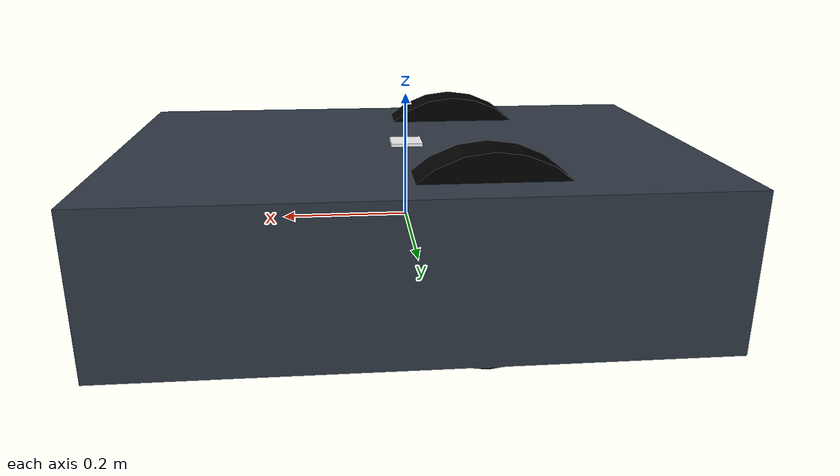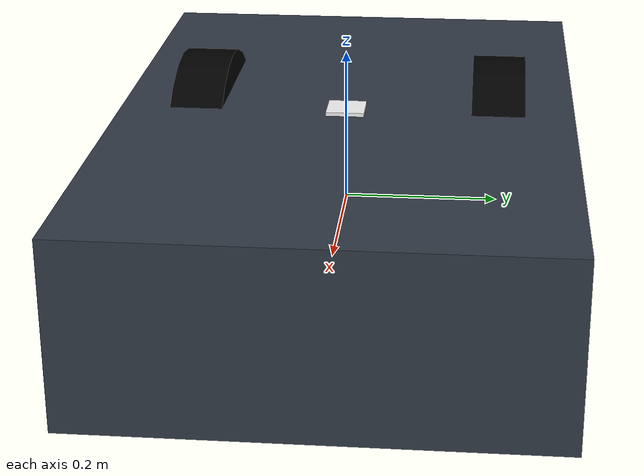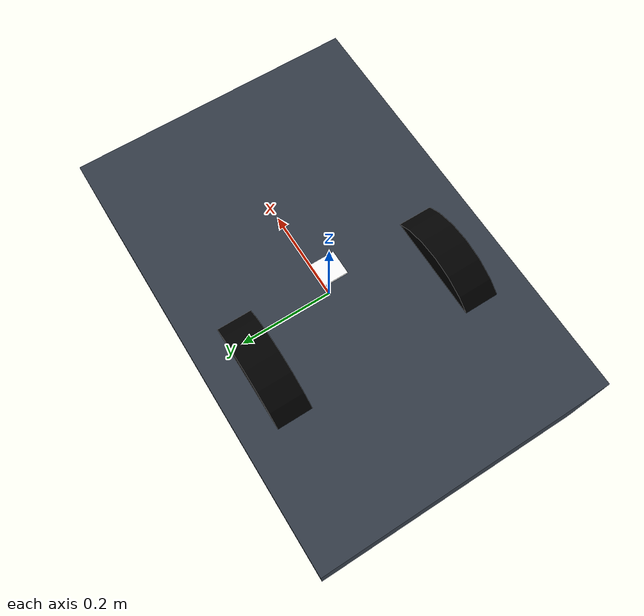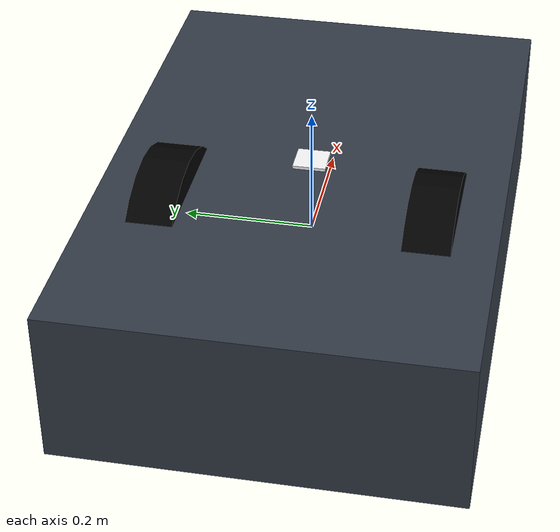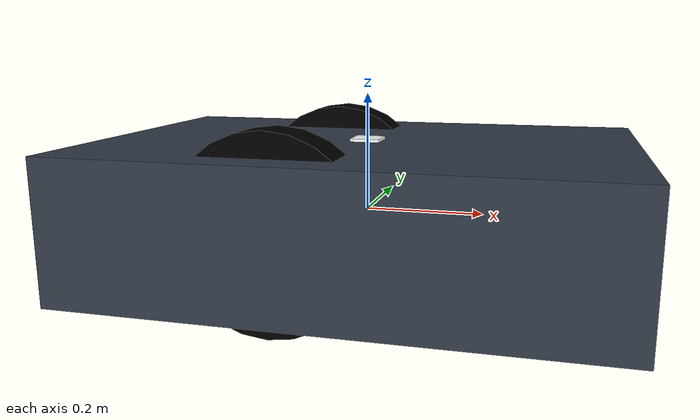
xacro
<?xml version="1.0" ?>

<!--Created by Alphonsus Adu-Bredu
	Assistive Robotics Group, Tufts University
    Email: alphonsusbq436@gmail.com
-->
<robot name="bill" xmlns:xacro="http://www.ros.org/wiki/xacro">

	<gazebo>
	  <plugin name="gazebo_ros_control" filename="libgazebo_ros_control.so">
	    <robotNamespace>/bill</robotNamespace>
	    <robotSimType>gazebo_ros_control/DefaultRobotHWSim</robotSimType>
	  </plugin>
	</gazebo>

	<gazebo>
		<plugin name="p3d_base_controller" filename="libgazebo_ros_p3d.so">
			<alwaysOn>true</alwaysOn>
			<updateRate>50.0</updateRate>
			<bodyName>base_link</bodyName>
			<topicName>odom</topicName>
			<gaussianNoise>0.01</gaussianNoise>
			<frameName>map</frameName>
			<xyzOffsets>0 0 0</xyzOffsets>
			<rpyOffsets>0 0 0</rpyOffsets>
		</plugin>
	</gazebo>

	<material name="black">
		<color rgba="0.0 0.0 0.0 1.0"/>
	</material>
	<material name="blue">
		<color rgba="0.203125 0.23828125 0.28515625 1.0"/>
	</material>
	<material name="green">
		<color rgba="0.0 0.8 0.0 1.0"/>
	</material>
	<material name="grey">
		<color rgba="0.2 0.2 0.2 1.0"/>
	</material>
	<material name="orange">
		<color rgba="1.0 0.423529411765 0.0392156862745 1.0"/>
	</material>
	<material name="brown">
		<color rgba="0.870588235294 0.811764705882 0.764705882353 1.0"/>
	</material>
	<material name="red">
		<color rgba="0.80078125 0.12890625 0.1328425 1.0"/>
	</material>
	<material name="white">
		<color rgba="1.0 1.0 1.0 1.0"/>
	</material>

	<gazebo reference="base_link">
		<material>Gazebo/Blue</material>
	</gazebo>

	<gazebo reference="caster">
		<material>Gazebo/Black</material>
	</gazebo>
	<gazebo reference="left_wheel">
		<material>Gazebo/Black</material>
	</gazebo>
	<gazebo reference="right_wheel">
		<material>Gazebo/Black</material>
	</gazebo>

	<link name="base_link"/>

	<link name="chassis">
		<!--pose and inertial-->
		<pose>0 0 0.1 0 0 0 </pose>
		<inertial>
			<mass value="15"/>
			<origin rpy="0 0 0" xyz="0 0 0.1"/>
			<inertia ixx="0.0395416666667" ixy="0" ixz="0" iyy="0.106208333333" iyz="0.106208333333" izz="0"/>
		</inertial>

		<!--body-->
		<collision name="collision_chassis">
			<geometry>
				<box size="0.9 0.6 0.24"/>
			</geometry>
		</collision>

		<visual>
			<origin rpy="0 0 0" xyz="0 0 0"/>
			<geometry>
				<box size="0.9 0.6 0.24"/>
			</geometry>
			<material name="blue"/>
		</visual>
	</link>

	<joint name="base_link_joint" type="fixed" >
		<parent link="base_link"/>
		<child link="chassis"/>

	</joint>

		<!--caster front -->
		<link name="caster">
			<inertial>
				<mass value="0.5"/>
				<origin rpy="1.57079632679 0 0" xyz="0 0 0"/>
				<inertia ixx="0.001" ixy="0" ixz="0" iyy="0.001" iyz="0" izz="0.001"/>
			</inertial>

		<collision name="caster_front_collision">
			<origin rpy="1.57079632679 0 0" xyz="0 0 -0.1"/>
			<geometry>
				<sphere radius="0.07"/>
			</geometry>
			<surface>
				<friction>
					<ode>
						<mu>0</mu>
						<mu2>0</mu2>
						<slip1>1.0</slip1>
						<slip2>1.0</slip2>
					</ode>
				</friction>
			</surface>
		</collision>

		<visual name="caster_front_visual">
			<origin rpy="1.57079632679 0 0" xyz="0 0 -0.1"/>
			<geometry>
				<sphere radius="0.07"/>
			</geometry>
			<material name="black"/>
		</visual>
	</link>

	<joint name="caster_front_joint" type="fixed">
	    <parent link="chassis"/>
	    <child link="caster"/>
	    <origin rpy="-1.57079632679 0 0" xyz="0.2 0.1 -0.1"/>
	</joint>

	  <gazebo reference="caster">
	    <turnGravityOff>false</turnGravityOff>
	  </gazebo>

	<link name="right_wheel">
		<inertial>
			<mass value="2"/>
			<origin rpy="0 1.5707 1.5707" xyz="0 0 0"/>
			<inertia ixx="0.000526666666667" ixy="0" ixz="0" iyy="0.000526666666667" iyz="0" izz="0.001"/>
		</inertial>

		<collision name="right_wheel_collision">
			<origin rpy="0 1.5707 1.5707" xyz="0 0 0"/>
			<geometry>
				<cylinder length="0.07" radius="0.162"/>
			</geometry>
		</collision>

		<visual name="right_wheel_visual">
			<origin rpy="0 1.5707 1.5707" xyz="0 0 0"/>
			<geometry>
				<cylinder length="0.07" radius="0.162"/>
			</geometry>
			<material name="black"/>
		</visual>
	</link>

	<joint name="right_wheel_joint" type="continuous">
		<origin rpy="0 0 0" xyz="-0.1 0.20 0"/>
		<child link="right_wheel"/>
		<parent link="chassis"/>
		<axis rpy="0 0 0" xyz="0 1 0"/>
		<limit effort="10000" velocity="1000"/>
		<joint_properties damping="1.0" friction="1.0"/>
	</joint>

	<link name="left_wheel">
		<inertial>
			<mass value="2"/>
			<origin rpy="0 1.5707 1.5707" xyz="0 0 0"/>
			<inertia ixx="0.000526666666667" ixy="0" ixz="0" iyy="0.000526666666667" iyz="0" izz="0.001"/>
		</inertial>

		<collision name="left_wheel_collision">
			<origin rpy="0 1.5707 1.5707" xyz="0 0 0"/>
			<geometry>
				<cylinder length="0.07" radius="0.162"/>
			</geometry>
		</collision>

		<visual name="left_wheel_visual">
			<origin rpy="0 1.5707 1.5707" xyz="0 0 0"/>
			<geometry>
				<cylinder length="0.07" radius="0.162"/>
			</geometry>
			<material name="black"/>
		</visual>
	</link>

	<joint name="left_wheel_joint" type="continuous">
		<origin rpy="0 0 0" xyz="-0.1 -0.20 0"/>
		<child link="left_wheel"/>
		<parent link="chassis"/>
		<axis rpy="0 0 0" xyz="0 1 0"/>
		<limit effort="10000" velocity="1000"/>
		<joint_properties damping="1.0" friction="1.0"/>
	</joint>

	<!--IMU-->
	<link name="imu">
	    <visual>
	      <origin rpy="0 0 0" xyz="0  0  0"/>
	      <geometry>
	        <box size="0.05 0.05 0.05"/>
	      </geometry>
	      <material name="white"/>
	    </visual>

	    <collision>
	      <origin rpy="0 0 0" xyz="0.15  0.13  0.07"/>
	      <geometry>
	        <box size="0.05 0.05 0.05"/>
	      </geometry>
	      <material name="white"/>
	    </collision>

	    <inertial>
		  <origin xyz="0 0 0.015" rpy="0 0 0"/>
		  <mass value="0.01"/>
		  <inertia
		    ixx="1.0" ixy="0.0" ixz="0.0"
		    iyy="1.0" iyz="0.0"
		    izz="1.0"/>
		</inertial>
	</link>

	<joint name="imu_joint" type="fixed" >
		<parent link="chassis"/>
		<child link="imu"/>
		<origin xyz="0.0 0 0.1" rpy="0 0 0"/>
	</joint>

	<gazebo reference="imu">
    <gravity>true</gravity>
    <sensor name="imu_sensor" type="imu">
      <always_on>true</always_on>
      <update_rate>100</update_rate>
      <visualize>true</visualize>
      <topic>__default_topic__</topic>
      <plugin filename="libgazebo_ros_imu_sensor.so" name="imu_plugin">
        <topicName>imu</topicName>
        <bodyName>imu</bodyName>
        <updateRateHZ>10.0</updateRateHZ>
        <gaussianNoise>0.0</gaussianNoise>
        <xyzOffset>0 0 0</xyzOffset>
        <rpyOffset>0 0 0</rpyOffset>
        <frameName>imu</frameName>
      </plugin>
      <pose>0 0 0 0 0 0</pose>
    </sensor>
  </gazebo>

	<transmission name="tran1">
			<type>transmission_interface/SimpleTransmission</type>
			<joint name ="left_wheel_joint">
				<hardwareInterface>hardware_interface/EffortJointInterface</hardwareInterface>
			</joint>
			<actuator name="motor1">
		      <hardwareInterface>EffortJointInterface</hardwareInterface>
		      <mechanicalReduction>1</mechanicalReduction>
		    </actuator>
	</transmission>

	<transmission name="tran2">
			<type>transmission_interface/SimpleTransmission</type>
			<joint name ="right_wheel_joint">
				<hardwareInterface>hardware_interface/EffortJointInterface</hardwareInterface>
			</joint>
			<actuator name="motor2">
		      <hardwareInterface>EffortJointInterface</hardwareInterface>
		      <mechanicalReduction>1</mechanicalReduction>
		    </actuator>
	</transmission>

</robot>
